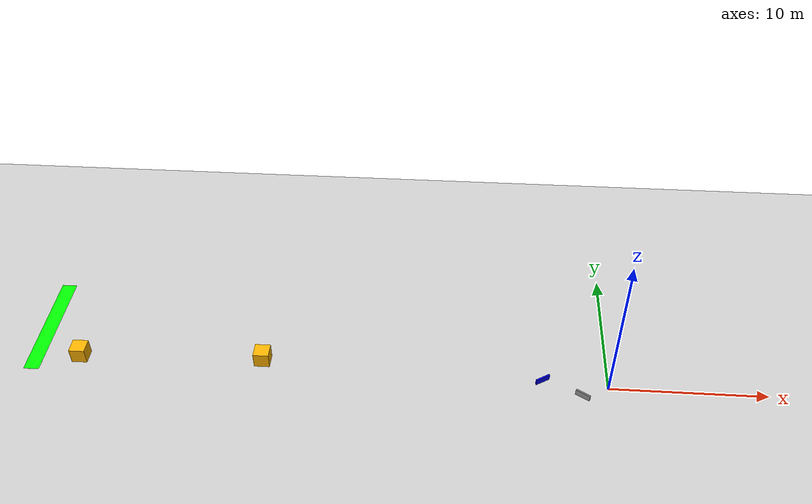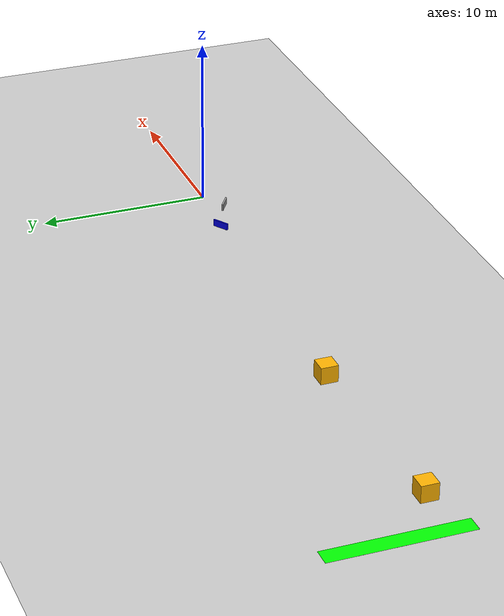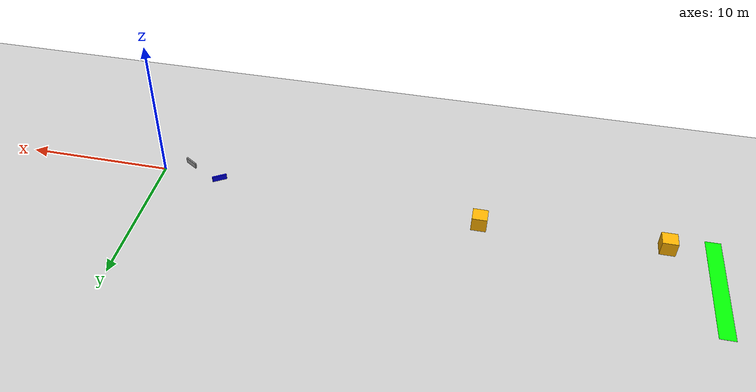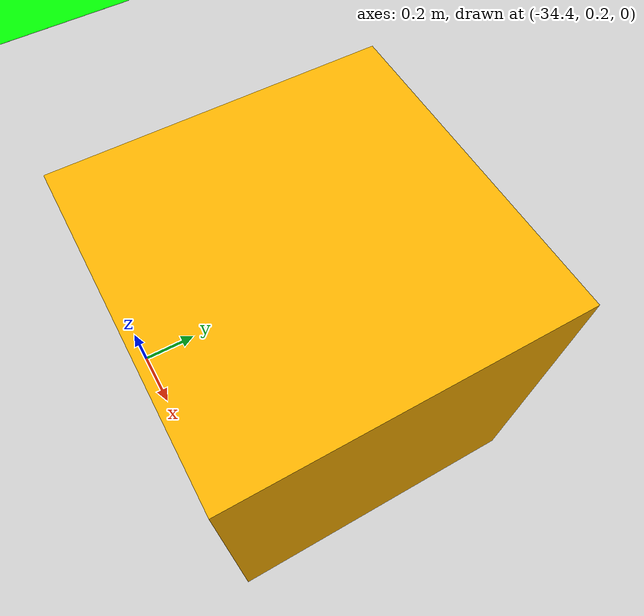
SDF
<sdf version="1.6">
 <world name="default">
  <light name="sun" type="directional">
   <pose>0 0 10 0 -0 0</pose>
   <diffuse>0.8 0.8 0.8 1</diffuse>
   <specular>0.2 0.2 0.2 1</specular>
   <attenuation>
    <range>1000</range>
    <constant>0.9</constant>
    <linear>0.01</linear>
    <quadratic>0.001</quadratic>
   </attenuation>
   <direction>-0.5 0.1 -0.9</direction>
  </light>
  <model name="ground_plane">
   <static>1</static>
   <link name="link">
    <collision name="collision">
     <geometry><plane><normal>0 0 1</normal><size>100 100</size></plane></geometry>
     <surface><friction><ode><mu>100</mu><mu2>50</mu2></ode></friction></surface>
    </collision>
    <visual name="visual">
     <cast_shadows>0</cast_shadows>
     <geometry><plane><normal>0 0 1</normal><size>100 100</size></plane></geometry>
     <material>
      <script><uri>file://media/materials/scripts/gazebo.material</uri><name>Gazebo/Grey</name></script>
     </material>
    </visual>
   </link>
  </model>
  <gravity>0 0 -9.8</gravity>
  <magnetic_field>6e-06 2.3e-05 -4.2e-05</magnetic_field>
  <atmosphere type="adiabatic"/>
  <physics name="default_physics" default="0" type="ode">
   <max_step_size>0.001</max_step_size>
   <real_time_factor>1</real_time_factor>
   <real_time_update_rate>1000</real_time_update_rate>
  </physics>
  <scene><ambient>0.4 0.4 0.4 1</ambient><background>0.7 0.7 0.7 1</background><shadows>0</shadows></scene>
  <audio><device>default</device></audio>
  <spherical_coordinates>
   <surface_model>EARTH_WGS84</surface_model>
   <latitude_deg>0</latitude_deg>
   <longitude_deg>0</longitude_deg>
   <elevation>0</elevation>
   <heading_deg>0</heading_deg>
  </spherical_coordinates>
  <model name="obstacle3">
   <link name="link">
    <inertial>
     <mass>1</mass>
     <inertia>
      <ixx>0.166667</ixx>
      <ixy>0</ixy>
      <ixz>0</ixz>
      <iyy>0.166667</iyy>
      <iyz>0</iyz>
      <izz>0.166667</izz>
     </inertia>
    </inertial>
    <kinematic>1</kinematic>
    <pose>0.484692 0.534725 0.220825 0 -0 0.996224</pose>
    <visual name="visual">
     <geometry><box><size>0.1 1 0.4</size></box></geometry>
     <material>
      <script><name>Gazebo/Grey</name><uri>file://media/materials/scripts/gazebo.material</uri></script>
      <shader type="vertex"><normal_map>__default__</normal_map></shader>
      <ambient>0.3 0.3 0.3 1</ambient>
      <diffuse>0.7 0.7 0.7 1</diffuse>
      <specular>0.01 0.01 0.01 1</specular>
      <emissive>0 0 0 1</emissive>
     </material>
    </visual>
    <collision name="collision">
     <geometry><box><size>0.1 1 0.4</size></box></geometry>
     <surface>
      <friction>
       <ode><mu>1</mu><mu2>1</mu2><fdir1>0 0 0</fdir1><slip1>0</slip1><slip2>0</slip2></ode>
       <torsional>
        <coefficient>1</coefficient>
        <patch_radius>0</patch_radius>
        <surface_radius>0</surface_radius>
        <use_patch_radius>1</use_patch_radius>
        <ode><slip>0</slip></ode>
       </torsional>
      </friction>
      <bounce><restitution_coefficient>0</restitution_coefficient><threshold>1e+06</threshold></bounce>
      <contact>
       <collide_without_contact>0</collide_without_contact>
       <collide_without_contact_bitmask>1</collide_without_contact_bitmask>
       <collide_bitmask>1</collide_bitmask>
       <ode>
        <soft_cfm>0</soft_cfm>
        <soft_erp>0.2</soft_erp>
        <kp>1e+13</kp>
        <kd>1</kd>
        <max_vel>0.01</max_vel>
        <min_depth>0</min_depth>
       </ode>
       <bullet>
        <split_impulse>1</split_impulse>
        <split_impulse_penetration_threshold>-0.01</split_impulse_penetration_threshold>
        <soft_cfm>0</soft_cfm>
        <soft_erp>0.2</soft_erp>
        <kp>1e+13</kp>
        <kd>1</kd>
       </bullet>
      </contact>
     </surface>
    </collision>
   </link>
   <static>0</static>
   <pose>-2.14914 -1.31175 0 0 -0 0</pose>
  </model>
  <model name="door">
   <link name="link_0">
    <pose>-1.62604 -1.40874 0.233746 0 0 -1.00248</pose>
    <inertial>
     <mass>1</mass>
     <inertia>
      <ixx>0.166667</ixx>
      <ixy>0</ixy>
      <ixz>0</ixz>
      <iyy>0.166667</iyy>
      <iyz>0</iyz>
      <izz>0.166667</izz>
     </inertia>
    </inertial>
    <kinematic>1</kinematic>
    <visual name="visual">
     <geometry><box><size>0.1 1 0.4</size></box></geometry>
     <material>
      <lighting>1</lighting>
      <script><uri>file://media/materials/scripts/gazebo.material</uri><name>Gazebo/Grey</name></script>
      <shader type="vertex"><normal_map>__default__</normal_map></shader>
      <ambient>0 0 1 1</ambient>
      <diffuse>0 0 1 1</diffuse>
      <specular>0.01 0.01 0.01 1</specular>
      <emissive>0 0 0 1</emissive>
     </material>
    </visual>
    <collision name="collision">
     <geometry><box><size>0.1 1 0.4</size></box></geometry>
     <surface>
      <friction>
       <ode><mu>1</mu><mu2>1</mu2><fdir1>0 0 0</fdir1><slip1>0</slip1><slip2>0</slip2></ode>
       <torsional>
        <coefficient>1</coefficient>
        <patch_radius>0</patch_radius>
        <surface_radius>0</surface_radius>
        <use_patch_radius>1</use_patch_radius>
        <ode><slip>0</slip></ode>
       </torsional>
      </friction>
      <bounce><restitution_coefficient>0</restitution_coefficient><threshold>1e+06</threshold></bounce>
      <contact>
       <collide_without_contact>0</collide_without_contact>
       <collide_without_contact_bitmask>1</collide_without_contact_bitmask>
       <collide_bitmask>1</collide_bitmask>
       <ode>
        <soft_cfm>0</soft_cfm>
        <soft_erp>0.2</soft_erp>
        <kp>1e+13</kp>
        <kd>1</kd>
        <max_vel>0.01</max_vel>
        <min_depth>0</min_depth>
       </ode>
       <bullet>
        <split_impulse>1</split_impulse>
        <split_impulse_penetration_threshold>-0.01</split_impulse_penetration_threshold>
        <soft_cfm>0</soft_cfm>
        <soft_erp>0.2</soft_erp>
        <kp>1e+13</kp>
        <kd>1</kd>
       </bullet>
      </contact>
     </surface>
    </collision>
   </link>
   <static>0</static>
   <pose>-2.49893 1.76548 0 0 -0 0</pose>
  </model>
  <model name="block">
   <link name="link">
    <inertial>
     <mass>1</mass>
     <inertia>
      <ixx>0.166667</ixx>
      <ixy>0</ixy>
      <ixz>0</ixz>
      <iyy>0.166667</iyy>
      <iyz>0</iyz>
      <izz>0.166667</izz>
     </inertia>
    </inertial>
    <kinematic>1</kinematic>
    <gravity>0</gravity>
    <visual name="visual">
     <geometry><box><size>1 1 1</size></box></geometry>
     <material>
      <script><name>Gazebo/Grey</name><uri>file://media/materials/scripts/gazebo.material</uri></script>
      <ambient>1 0 0 0</ambient>
      <shader type="vertex"><normal_map>__default__</normal_map></shader>
      <diffuse>1 0.7 0 1</diffuse>
      <specular>1 0.01 0.01 1</specular>
      <emissive>1 0 0 1</emissive>
     </material>
    </visual>
    <collision name="collision">
     <geometry><box><size>1 1 1</size></box></geometry>
     <surface>
      <friction>
       <ode><mu>1</mu><mu2>1</mu2><fdir1>0 0 0</fdir1><slip1>0</slip1><slip2>0</slip2></ode>
       <torsional>
        <coefficient>1</coefficient>
        <patch_radius>0</patch_radius>
        <surface_radius>0</surface_radius>
        <use_patch_radius>1</use_patch_radius>
        <ode><slip>0</slip></ode>
       </torsional>
      </friction>
      <bounce><restitution_coefficient>0</restitution_coefficient><threshold>1e+06</threshold></bounce>
      <contact>
       <collide_without_contact>0</collide_without_contact>
       <collide_without_contact_bitmask>1</collide_without_contact_bitmask>
       <collide_bitmask>1</collide_bitmask>
       <ode>
        <soft_cfm>0</soft_cfm>
        <soft_erp>0.2</soft_erp>
        <kp>1e+13</kp>
        <kd>1</kd>
        <max_vel>0.01</max_vel>
        <min_depth>0</min_depth>
       </ode>
       <bullet>
        <split_impulse>1</split_impulse>
        <split_impulse_penetration_threshold>-0.01</split_impulse_penetration_threshold>
        <soft_cfm>0</soft_cfm>
        <soft_erp>0.2</soft_erp>
        <kp>1e+13</kp>
        <kd>1</kd>
       </bullet>
      </contact>
     </surface>
    </collision>
   </link>
   <static>0</static>
   <pose>-22.1214 1.03585 0.5 0 -0 0</pose>
  </model>
  <model name="block_clone">
   <link name="link">
    <inertial>
     <mass>1</mass>
     <inertia>
      <ixx>0.166667</ixx>
      <ixy>0</ixy>
      <ixz>0</ixz>
      <iyy>0.166667</iyy>
      <iyz>0</iyz>
      <izz>0.166667</izz>
     </inertia>
    </inertial>
    <kinematic>1</kinematic>
    <gravity>0</gravity>
    <visual name="visual">
     <geometry><box><size>1 1 1</size></box></geometry>
     <material>
      <script><name>Gazebo/Grey</name><uri>file://media/materials/scripts/gazebo.material</uri></script>
      <ambient>1 0 0 0</ambient>
      <shader type="vertex"><normal_map>__default__</normal_map></shader>
      <diffuse>1 0.7 0 1</diffuse>
      <specular>1 0.01 0.01 1</specular>
      <emissive>1 0 0 1</emissive>
     </material>
    </visual>
   </link>
   <static>0</static>
   <pose>-33.9769 0.676266 0.5 0 -0 0</pose>
  </model>
  <model name="finish_line">
   <link name="link">
    <inertial>
     <mass>1</mass>
     <inertia>
      <ixx>0.166667</ixx>
      <ixy>0</ixy>
      <ixz>0</ixz>
      <iyy>0.166667</iyy>
      <iyz>0</iyz>
      <izz>0.166667</izz>
     </inertia>
    </inertial>
    <pose>2.11367 2.48643 -0.496859 0 -0 0</pose>
    <gravity>0</gravity>
    <visual name="visual">
     <geometry><box><size>1 8 0.001</size></box></geometry>
     <material>
      <script><name>Gazebo/Grey</name><uri>file://media/materials/scripts/gazebo.material</uri></script>
      <shader type="vertex"><normal_map>__default__</normal_map></shader>
      <ambient>0 1 0 1</ambient>
      <diffuse>0 1 0 1</diffuse>
      <specular>0 1 0 1</specular>
      <emissive>0 1 0 1</emissive>
     </material>
    </visual>
    <collision name="collision">
     <geometry><box><size>1 8 0.001</size></box></geometry>
     <surface>
      <friction>
       <ode><mu>1</mu><mu2>1</mu2><fdir1>0 0 0</fdir1><slip1>0</slip1><slip2>0</slip2></ode>
       <torsional>
        <coefficient>1</coefficient>
        <patch_radius>0</patch_radius>
        <surface_radius>0</surface_radius>
        <use_patch_radius>1</use_patch_radius>
        <ode><slip>0</slip></ode>
       </torsional>
      </friction>
      <bounce><restitution_coefficient>0</restitution_coefficient><threshold>1e+06</threshold></bounce>
      <contact>
       <collide_without_contact>0</collide_without_contact>
       <collide_without_contact_bitmask>1</collide_without_contact_bitmask>
       <collide_bitmask>1</collide_bitmask>
       <ode>
        <soft_cfm>0</soft_cfm>
        <soft_erp>0.2</soft_erp>
        <kp>1e+13</kp>
        <kd>1</kd>
        <max_vel>0.01</max_vel>
        <min_depth>0</min_depth>
       </ode>
       <bullet>
        <split_impulse>1</split_impulse>
        <split_impulse_penetration_threshold>-0.01</split_impulse_penetration_threshold>
        <soft_cfm>0</soft_cfm>
        <soft_erp>0.2</soft_erp>
        <kp>1e+13</kp>
        <kd>1</kd>
       </bullet>
      </contact>
     </surface>
    </collision>
   </link>
   <static>0</static>
   <pose>-39.0282 0.90144 0.5 0 -0 0</pose>
  </model>
 </world>
</sdf>
